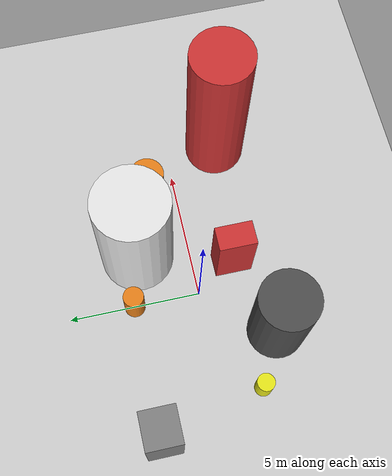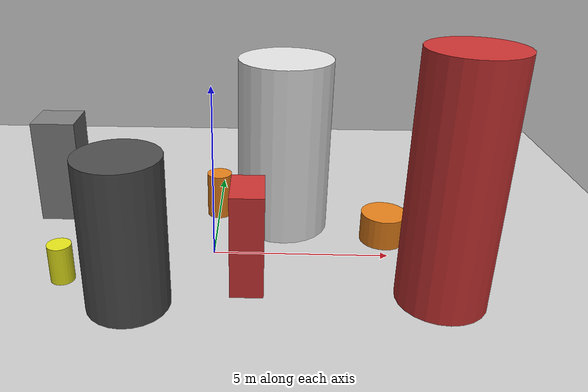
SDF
<?xml version='1.0'?>
<sdf version='1.6'>
  <world name='routeA_rl_v1__support_expansion__rl_train__mixed_3d_low_density_route__000127'>
    <!-- Sun light -->
    <light name='sun' type='directional'>
      <cast_shadows>1</cast_shadows>
      <pose>0 0 10 0 0 0</pose>
      <diffuse>0.8 0.8 0.8 1</diffuse>
      <specular>0.2 0.2 0.2 1</specular>
      <attenuation>
        <range>1000</range>
        <constant>0.9</constant>
        <linear>0.01</linear>
        <quadratic>0.001</quadratic>
      </attenuation>
      <direction>-0.5 0.1 -0.9</direction>
    </light>

    <!-- Ground plane -->
    <model name='ground_plane'>
      <static>1</static>
      <link name='link'>
        <collision name='collision'>
          <geometry>
            <plane>
              <normal>0 0 1</normal>
              <size>100 100</size>
            </plane>
          </geometry>
          <surface>
            <contact>
              <collide_bitmask>65535</collide_bitmask>
              <ode/>
            </contact>
            <friction>
              <ode>
                <mu>100</mu>
                <mu2>50</mu2>
              </ode>
              <torsional><ode/></torsional>
            </friction>
            <bounce/>
          </surface>
          <max_contacts>10</max_contacts>
        </collision>
        <visual name='visual'>
          <cast_shadows>0</cast_shadows>
          <geometry>
            <plane>
              <normal>0 0 1</normal>
              <size>100 100</size>
            </plane>
          </geometry>
          <material>
            <script>
              <uri>file://media/materials/scripts/gazebo.material</uri>
              <n>Gazebo/Grey</n>
            </script>
          </material>
        </visual>
      </link>
    </model>

    <!-- Environment -->
    <magnetic_field>6e-06 2.3e-05 -4.2e-05</magnetic_field>
    <atmosphere type='adiabatic'/>
    <physics name='default_physics' default='0' type='ode'>
      <gravity>0 0 -9.8</gravity>
      <max_step_size>0.004</max_step_size>
      <real_time_factor>1</real_time_factor>
      <real_time_update_rate>250</real_time_update_rate>
    </physics>
    <scene>
      <ambient>0.4 0.4 0.4 1</ambient>
      <background>0.7 0.7 0.7 1</background>
      <shadows>1</shadows>
    </scene>
    <wind/>
    <spherical_coordinates>
      <surface_model>EARTH_WGS84</surface_model>
      <latitude_deg>0</latitude_deg>
      <longitude_deg>0</longitude_deg>
      <elevation>0</elevation>
      <heading_deg>0</heading_deg>
    </spherical_coordinates>

    <!-- ============ OBSTACLES (8) ============ -->
    <model name='low_obs_0'>
      <static>1</static>
      <link name='link'>
        <visual name='visual'>
          <geometry>
            <cylinder>
              <radius>0.3294</radius>
              <length>1.0801</length>
            </cylinder>
          </geometry>
          <material>
            <script>
              <n>Gazebo/Yellow</n>
              <uri>file://media/materials/scripts/gazebo.material</uri>
            </script>
            <ambient>0.9 0.9 0.1 1</ambient>
          </material>
        </visual>
        <collision name='collision'>
          <geometry>
            <cylinder>
              <radius>0.3294</radius>
              <length>1.0801</length>
            </cylinder>
          </geometry>
          <max_contacts>10</max_contacts>
          <surface>
            <contact><ode/></contact>
            <bounce/>
            <friction>
              <ode><mu>1</mu><mu2>1</mu2></ode>
              <torsional><ode/></torsional>
            </friction>
          </surface>
        </collision>
      </link>
      <pose>-4.0000 -1.5000 0.5401 0 0 0.0000</pose>
    </model>

    <model name='low_obs_1'>
      <static>1</static>
      <link name='link'>
        <visual name='visual'>
          <geometry>
            <cylinder>
              <radius>0.3871</radius>
              <length>1.4137</length>
            </cylinder>
          </geometry>
          <material>
            <script>
              <n>Gazebo/Orange</n>
              <uri>file://media/materials/scripts/gazebo.material</uri>
            </script>
            <ambient>0.9 0.5 0.1 1</ambient>
          </material>
        </visual>
        <collision name='collision'>
          <geometry>
            <cylinder>
              <radius>0.3871</radius>
              <length>1.4137</length>
            </cylinder>
          </geometry>
          <max_contacts>10</max_contacts>
          <surface>
            <contact><ode/></contact>
            <bounce/>
            <friction>
              <ode><mu>1</mu><mu2>1</mu2></ode>
              <torsional><ode/></torsional>
            </friction>
          </surface>
        </collision>
      </link>
      <pose>0.0000 2.5000 0.7069 0 0 0.0000</pose>
    </model>

    <model name='low_obs_2'>
      <static>1</static>
      <link name='link'>
        <visual name='visual'>
          <geometry>
            <cylinder>
              <radius>0.6741</radius>
              <length>0.8953</length>
            </cylinder>
          </geometry>
          <material>
            <script>
              <n>Gazebo/Orange</n>
              <uri>file://media/materials/scripts/gazebo.material</uri>
            </script>
            <ambient>0.9 0.5 0.1 1</ambient>
          </material>
        </visual>
        <collision name='collision'>
          <geometry>
            <cylinder>
              <radius>0.6741</radius>
              <length>0.8953</length>
            </cylinder>
          </geometry>
          <max_contacts>10</max_contacts>
          <surface>
            <contact><ode/></contact>
            <bounce/>
            <friction>
              <ode><mu>1</mu><mu2>1</mu2></ode>
              <torsional><ode/></torsional>
            </friction>
          </surface>
        </collision>
      </link>
      <pose>5.0000 1.0000 0.4476 0 0 0.0000</pose>
    </model>

    <model name='tall_obs_0'>
      <static>1</static>
      <link name='link'>
        <visual name='visual'>
          <geometry>
            <cylinder>
              <radius>1.0887</radius>
              <length>4.0703</length>
            </cylinder>
          </geometry>
          <material>
            <script>
              <n>Gazebo/DarkGrey</n>
              <uri>file://media/materials/scripts/gazebo.material</uri>
            </script>
            <ambient>0.3 0.3 0.3 1</ambient>
          </material>
        </visual>
        <collision name='collision'>
          <geometry>
            <cylinder>
              <radius>1.0887</radius>
              <length>4.0703</length>
            </cylinder>
          </geometry>
          <max_contacts>10</max_contacts>
          <surface>
            <contact><ode/></contact>
            <bounce/>
            <friction>
              <ode><mu>1</mu><mu2>1</mu2></ode>
              <torsional><ode/></torsional>
            </friction>
          </surface>
        </collision>
      </link>
      <pose>-2.0000 -2.5000 2.0352 0 0 0.0000</pose>
    </model>

    <model name='tall_obs_1'>
      <static>1</static>
      <link name='link'>
        <visual name='visual'>
          <geometry>
            <cylinder>
              <radius>1.3879</radius>
              <length>5.2705</length>
            </cylinder>
          </geometry>
          <material>
            <script>
              <n>Gazebo/White</n>
              <uri>file://media/materials/scripts/gazebo.material</uri>
            </script>
            <ambient>0.9 0.9 0.9 1</ambient>
          </material>
        </visual>
        <collision name='collision'>
          <geometry>
            <cylinder>
              <radius>1.3879</radius>
              <length>5.2705</length>
            </cylinder>
          </geometry>
          <max_contacts>10</max_contacts>
          <surface>
            <contact><ode/></contact>
            <bounce/>
            <friction>
              <ode><mu>1</mu><mu2>1</mu2></ode>
              <torsional><ode/></torsional>
            </friction>
          </surface>
        </collision>
      </link>
      <pose>2.0000 2.0000 2.6353 0 0 0.0000</pose>
    </model>

    <model name='tall_obs_2'>
      <static>1</static>
      <link name='link'>
        <visual name='visual'>
          <geometry>
            <cylinder>
              <radius>1.1645</radius>
              <length>6.5331</length>
            </cylinder>
          </geometry>
          <material>
            <script>
              <n>Gazebo/Red</n>
              <uri>file://media/materials/scripts/gazebo.material</uri>
            </script>
            <ambient>0.8 0.2 0.2 1</ambient>
          </material>
        </visual>
        <collision name='collision'>
          <geometry>
            <cylinder>
              <radius>1.1645</radius>
              <length>6.5331</length>
            </cylinder>
          </geometry>
          <max_contacts>10</max_contacts>
          <surface>
            <contact><ode/></contact>
            <bounce/>
            <friction>
              <ode><mu>1</mu><mu2>1</mu2></ode>
              <torsional><ode/></torsional>
            </friction>
          </surface>
        </collision>
      </link>
      <pose>6.0000 -2.0000 3.2666 0 0 0.0000</pose>
    </model>

    <model name='med_obs_0'>
      <static>1</static>
      <link name='link'>
        <visual name='visual'>
          <geometry>
            <box>
              <size>1.3334 1.2922 3.2243</size>
            </box>
          </geometry>
          <material>
            <script>
              <n>Gazebo/Grey</n>
              <uri>file://media/materials/scripts/gazebo.material</uri>
            </script>
            <ambient>0.5 0.5 0.5 1</ambient>
          </material>
        </visual>
        <collision name='collision'>
          <geometry>
            <box>
              <size>1.3334 1.2922 3.2243</size>
            </box>
          </geometry>
          <max_contacts>10</max_contacts>
          <surface>
            <contact><ode/></contact>
            <bounce/>
            <friction>
              <ode><mu>1</mu><mu2>1</mu2></ode>
              <torsional><ode/></torsional>
            </friction>
          </surface>
        </collision>
      </link>
      <pose>-5.0000 2.5000 1.6122 0 0 0.0000</pose>
    </model>

    <model name='med_obs_1'>
      <static>1</static>
      <link name='link'>
        <visual name='visual'>
          <geometry>
            <box>
              <size>0.8862 1.3934 2.8661</size>
            </box>
          </geometry>
          <material>
            <script>
              <n>Gazebo/Red</n>
              <uri>file://media/materials/scripts/gazebo.material</uri>
            </script>
            <ambient>0.8 0.2 0.2 1</ambient>
          </material>
        </visual>
        <collision name='collision'>
          <geometry>
            <box>
              <size>0.8862 1.3934 2.8661</size>
            </box>
          </geometry>
          <max_contacts>10</max_contacts>
          <surface>
            <contact><ode/></contact>
            <bounce/>
            <friction>
              <ode><mu>1</mu><mu2>1</mu2></ode>
              <torsional><ode/></torsional>
            </friction>
          </surface>
        </collision>
      </link>
      <pose>1.0000 -1.5000 1.4330 0 0 0.0000</pose>
    </model>

    <!-- GUI camera -->
    <gui fullscreen='0'>
      <camera name='user_camera'>
        <pose>-15 0 18 0 0.85 0.15</pose>
        <view_controller>orbit</view_controller>
        <projection_type>perspective</projection_type>
      </camera>
    </gui>
  </world>
</sdf>
